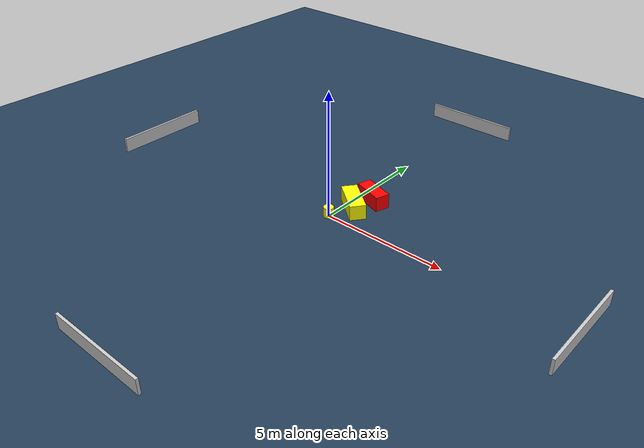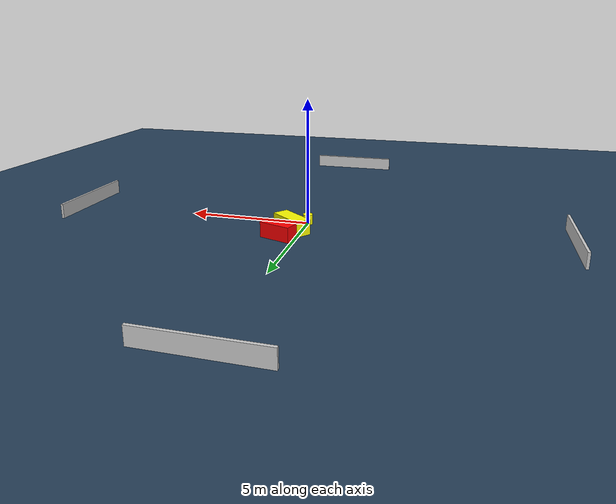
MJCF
<?xml version="1.0" ?>
<mujoco model="generated_environment">
  <option timestep="0.01" integrator="RK4" cone="elliptic"/>
  <default>
    <geom density="1"/>
  </default>
  <asset>
    <texture builtin="gradient" height="3072" name="skybox" rgb1="0.3 0.5 0.7" rgb2="0 0 0" type="skybox" width="512"/>
    <texture builtin="checker" height="300" name="groundplane" rgb1="0.2 0.3 0.4" rgb2="0.1 0.2 0.3" type="2d" width="300"/>
    <material name="groundplane" reflectance="0.2" texrepeat="5 5" texture="groundplane"/>
  </asset>
  <worldbody>
    <light dir="0 0 -1" directional="true" pos="0 0 1.5"/>
    <geom condim="3" friction="0.5 0.005 0.001" material="groundplane" name="floor" pos="0 0 0" size="0 0 0.05" type="plane"/>
    <body name="walls">
      <geom name="wall_1" condim="4" pos="-10.0 0.0 0.3" rgba="0.800000011920929 0.800000011920929 0.800000011920929 1.0" size="0.05 2.0 0.3" type="box"/>
      <geom name="wall_2" condim="4" pos="10.0 0.0 0.3" rgba="0.800000011920929 0.800000011920929 0.800000011920929 1.0" size="0.05 2.0 0.3" type="box"/>
      <geom name="wall_3" condim="4" pos="0.0 -10.0 0.3" rgba="0.800000011920929 0.800000011920929 0.800000011920929 1.0" size="2.0 0.05 0.3" type="box"/>
      <geom name="wall_4" condim="4" pos="0.0 10.0 0.3" rgba="0.800000011920929 0.800000011920929 0.800000011920929 1.0" size="2.0 0.05 0.3" type="box"/>
    </body>
    <body name="robot">
      <joint name="joint_x" type="slide" pos="0 0 0" axis="1 0 0"/>
      <joint name="joint_y" type="slide" pos="0 0 0" axis="0 1 0"/>
      <geom name="robot" type="cylinder" pos="0.0 0.0 0.2" size="0.2 0.2 0.0" mass="5.0" friction="1.0 0.005 0.0001" condim="4" rgba="1.0 1.0 0.0 1.0"/>
    </body>
    <body name="obstacle_1_movable">
      <geom name="obstacle_1_movable" condim="4" pos="0.39248316778901843 0.9717149422051713 0.3" euler="0 0 232.44696131808195" friction="0.0 0.005 0.001" rgba="1.0 1.0 0.0 1.0" size="0.3147686356447167 0.7605639419894834 0.3" type="box" mass="0.1"/>
      <joint type="free"/>
    </body>
    <body name="obstacle_2_static">
      <geom name="obstacle_2_static" condim="4" pos="0.6488309261799032 1.8562717562082713 0.3" euler="0 0 72.07610557787093" friction="0.0 0.005 0.001" rgba="1.0 0.0 0.0 1.0" size="0.2889442646086511 0.6399384768863012 0.3" type="box"/>
    </body>
  </worldbody>
  <actuator>
    <motor name="actuator_x" joint="joint_x" gear="1" ctrlrange="-1 1"/>
    <motor name="actuator_y" joint="joint_y" gear="1" ctrlrange="-1 1"/>
  </actuator>
</mujoco>
